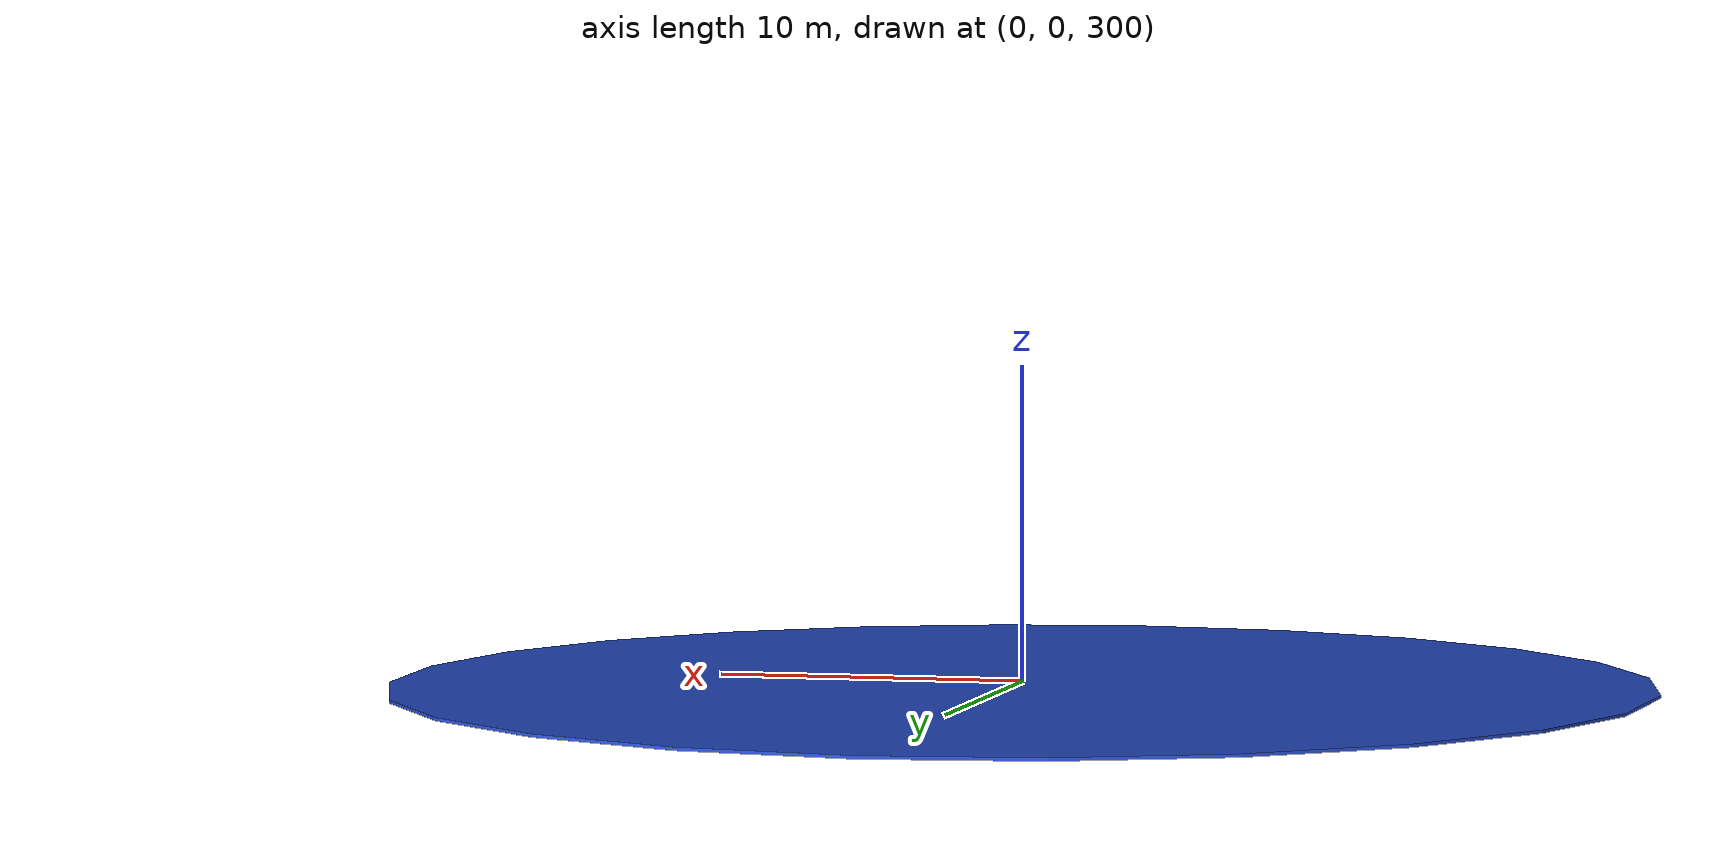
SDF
<?xml version="1.0" ?>
<sdf version="1.5">
  <model name="cylinder area">
    <pose>0 0 300 0 0 0</pose>
    <static>false</static>
    <link name="link">
      <inertial>
        <mass>2000</mass>
        <inertia>
          <ixx>66666666.666666</ixx>
          <ixy>0</ixy>
          <ixz>0</ixz>
          <iyy>66666666.666666</iyy>
          <iyz>0</iyz>
          <izz>13333333.333333</izz>
        </inertia>
      </inertial>
      <collision name="collision">
        <geometry>
          <cylinder>
              <radius>20</radius>
              <length>0.1</length>
          </cylinder>
        </geometry>
      </collision>
      <visual name="visual">
        <geometry>
          <cylinder>
              <radius>20</radius>
              <length>0.1</length>
          </cylinder>
        </geometry>
        <material>
          <script>
            <name>Gazebo/Blue</name>
            <uri>file://media/materials/scripts/gazebo.material</uri>
          </script>
        </material>
      </visual>
    </link>
  </model>
</sdf>
